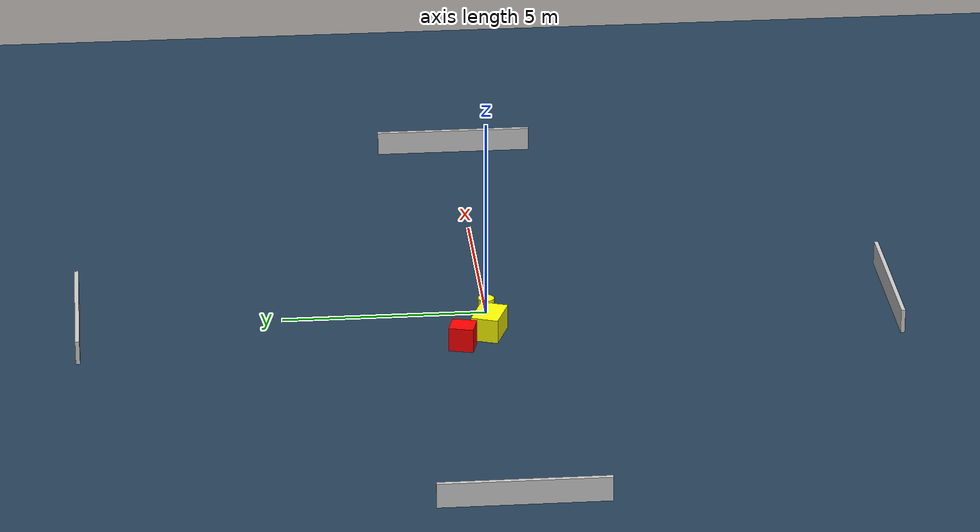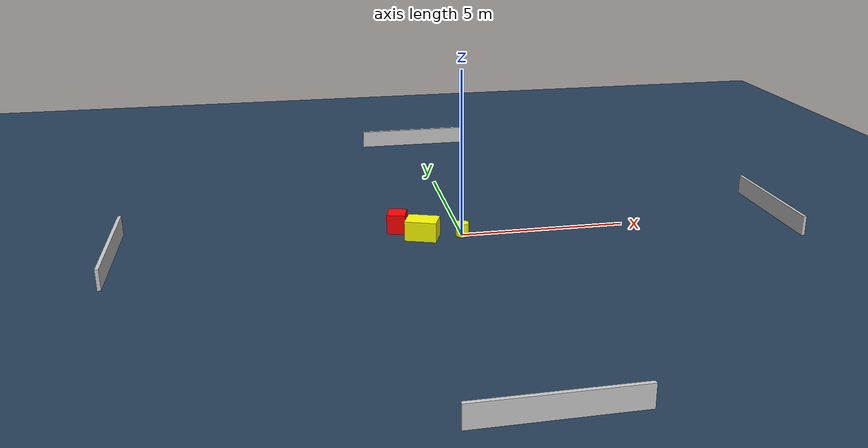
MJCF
<?xml version="1.0" ?>
<mujoco model="generated_environment">
  <option timestep="0.01" integrator="RK4" cone="elliptic"/>
  <default>
    <geom density="1"/>
  </default>
  <asset>
    <texture builtin="gradient" height="3072" name="skybox" rgb1="0.3 0.5 0.7" rgb2="0 0 0" type="skybox" width="512"/>
    <texture builtin="checker" height="300" name="groundplane" rgb1="0.2 0.3 0.4" rgb2="0.1 0.2 0.3" type="2d" width="300"/>
    <material name="groundplane" reflectance="0.2" texrepeat="5 5" texture="groundplane"/>
  </asset>
  <worldbody>
    <light dir="0 0 -1" directional="true" pos="0 0 1.5"/>
    <geom condim="3" friction="0.5 0.005 0.001" material="groundplane" name="floor" pos="0 0 0" size="0 0 0.05" type="plane"/>
    <body name="walls">
      <geom name="wall_1" condim="4" pos="-10.0 0.0 0.3" rgba="0.800000011920929 0.800000011920929 0.800000011920929 1.0" size="0.05 2.0 0.3" type="box"/>
      <geom name="wall_2" condim="4" pos="10.0 0.0 0.3" rgba="0.800000011920929 0.800000011920929 0.800000011920929 1.0" size="0.05 2.0 0.3" type="box"/>
      <geom name="wall_3" condim="4" pos="0.0 -10.0 0.3" rgba="0.800000011920929 0.800000011920929 0.800000011920929 1.0" size="2.0 0.05 0.3" type="box"/>
      <geom name="wall_4" condim="4" pos="0.0 10.0 0.3" rgba="0.800000011920929 0.800000011920929 0.800000011920929 1.0" size="2.0 0.05 0.3" type="box"/>
    </body>
    <body name="robot">
      <joint name="joint_x" type="slide" pos="0 0 0" axis="1 0 0"/>
      <joint name="joint_y" type="slide" pos="0 0 0" axis="0 1 0"/>
      <geom name="robot" type="cylinder" pos="0.0 0.0 0.2" size="0.2 0.2 0.0" mass="5.0" friction="1.0 0.005 0.0001" condim="4" rgba="1.0 1.0 0.0 1.0"/>
    </body>
    <body name="obstacle_1_movable">
      <geom name="obstacle_1_movable" condim="4" pos="-1.1954672510919306 0.0209704681029819 0.3" euler="0 0 249.76520244713035" friction="0.0 0.005 0.001" rgba="1.0 1.0 0.0 1.0" size="0.335011510861852 0.4724097064726215 0.3" type="box" mass="0.1"/>
      <joint type="free"/>
    </body>
    <body name="obstacle_2_static">
      <geom name="obstacle_2_static" condim="4" pos="-1.8621408987312467 0.7257569424742168 0.3" euler="0 0 345.79421405928997" friction="0.0 0.005 0.001" rgba="1.0 0.0 0.0 1.0" size="0.2743193041352785 0.30083083466459026 0.3" type="box"/>
    </body>
  </worldbody>
  <actuator>
    <motor name="actuator_x" joint="joint_x" gear="1" ctrlrange="-1 1"/>
    <motor name="actuator_y" joint="joint_y" gear="1" ctrlrange="-1 1"/>
  </actuator>
</mujoco>
